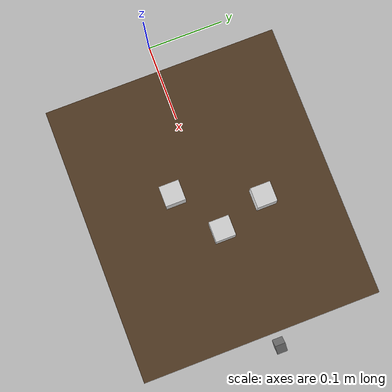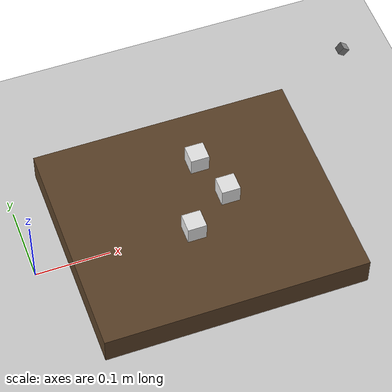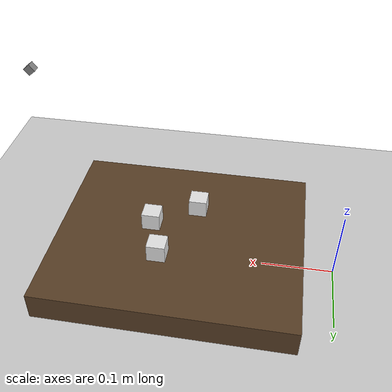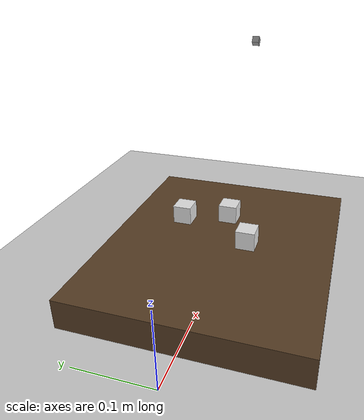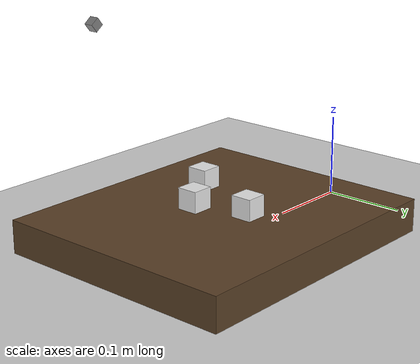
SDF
<?xml version="1.0"?>
<sdf version="1.9">
  <world name="workspace">

    <plugin filename="gz-sim-physics-system" name="gz::sim::systems::Physics">
    </plugin>
    <plugin filename="gz-sim-user-commands-system" name="gz::sim::systems::UserCommands">
    </plugin>
    <plugin filename="gz-sim-scene-broadcaster-system" name="gz::sim::systems::SceneBroadcaster">
    </plugin>
    <plugin filename="gz-sim-sensors-system" name="gz::sim::systems::Sensors">
      <render_engine>ogre2</render_engine>
    </plugin>

    <physics type="ode">
      <max_step_size>0.001</max_step_size>
      <real_time_factor>1</real_time_factor>
      <real_time_update_rate>250</real_time_update_rate>
    </physics>

    <scene>
      <ambient>0.4 0.4 0.4 1.0</ambient>
      <background>0.7 0.7 0.7 1.0</background>
    </scene>
    <light type="directional" name="sun">
      <direction>-0.5 -0.3 -1.0</direction>
      <diffuse>0.8 0.8 0.7 1.0</diffuse>
      <specular>0.3 0.3 0.3 1.0</specular>
    </light>
    <!-- Ground -->
    <model name="ground">
      <static>true</static>
      <link name="link">
        <collision name="collision">
          <geometry>
            <plane><normal>0 0 1</normal></plane>
          </geometry>
        </collision>
        <visual name="visual">
          <geometry>
            <plane>
              <normal>0 0 1</normal>
              <size>100 100</size>
            </plane>
          </geometry>
          <material>
            <ambient>0.8 0.8 0.8 1</ambient>
            <diffuse>0.8 0.8 0.8 1</diffuse>
          </material>
        </visual>
      </link>
    </model>

    <!-- Table: clear of arm base_link. Height lowered so the arm can reach over it. -->
    <model name="table">
      <static>true</static>
      <pose>0.22 0 0.02 0 0 0</pose>
      <link name="table_link">
        <visual name="visual">
          <geometry><box><size>0.35 0.30 0.04</size></box></geometry>
          <material>
            <ambient>0.35 0.25 0.15 1.0</ambient>
            <diffuse>0.35 0.25 0.15 1.0</diffuse>
          </material>
        </visual>
        <collision name="collision">
          <geometry><box><size>0.35 0.30 0.04</size></box></geometry>
        </collision>
      </link>
    </model>

    <!-- Blocks: small 0.025 m white cubes, dropped just above table surface -->
    <model name="red_block">
      <pose>0.24 0.06 0.065 0 0 0</pose>
      <link name="block_link">
        <visual name="visual">
          <geometry><box><size>0.025 0.025 0.025</size></box></geometry>
          <material>
            <ambient>0.9 0.9 0.9 1.0</ambient>
            <diffuse>0.9 0.9 0.9 1.0</diffuse>
          </material>
        </visual>
        <collision name="collision">
          <geometry><box><size>0.025 0.025 0.025</size></box></geometry>
        </collision>
        <inertial>
          <mass>0.02</mass>
          <inertia>
            <ixx>2.08e-06</ixx><ixy>0</ixy><ixz>0</ixz>
            <iyy>2.08e-06</iyy><iyz>0</iyz>
            <izz>2.08e-06</izz>
          </inertia>
        </inertial>
      </link>
    </model>

    <model name="green_block">
      <pose>0.20 -0.04 0.065 0 0 0</pose>
      <link name="block_link">
        <visual name="visual">
          <geometry><box><size>0.025 0.025 0.025</size></box></geometry>
          <material>
            <ambient>0.9 0.9 0.9 1.0</ambient>
            <diffuse>0.9 0.9 0.9 1.0</diffuse>
          </material>
        </visual>
        <collision name="collision">
          <geometry><box><size>0.025 0.025 0.025</size></box></geometry>
        </collision>
        <inertial>
          <mass>0.02</mass>
          <inertia>
            <ixx>2.08e-06</ixx><ixy>0</ixy><ixz>0</ixz>
            <iyy>2.08e-06</iyy><iyz>0</iyz>
            <izz>2.08e-06</izz>
          </inertia>
        </inertial>
      </link>
    </model>

    <model name="blue_block">
      <pose>0.26 0.00 0.065 0 0 0</pose>
      <link name="block_link">
        <visual name="visual">
          <geometry><box><size>0.025 0.025 0.025</size></box></geometry>
          <material>
            <ambient>0.9 0.9 0.9 1.0</ambient>
            <diffuse>0.9 0.9 0.9 1.0</diffuse>
          </material>
        </visual>
        <collision name="collision">
          <geometry><box><size>0.025 0.025 0.025</size></box></geometry>
        </collision>
        <inertial>
          <mass>0.02</mass>
          <inertia>
            <ixx>2.08e-06</ixx><ixy>0</ixy><ixz>0</ixz>
            <iyy>2.08e-06</iyy><iyz>0</iyz>
            <izz>2.08e-06</izz>
          </inertia>
        </inertial>
      </link>
    </model>

    <!-- Front camera: angled view of the workspace -->
    <model name="cam_front">
      <static>true</static>
      <pose>0.40 0 0.28 0 0.9 3.14</pose>
      <link name="camera_link">
        <visual name="visual">
          <geometry><box><size>0.01 0.01 0.01</size></box></geometry>
          <material><ambient>0.5 0.5 0.5 1</ambient></material>
        </visual>
        <collision name="collision">
          <geometry><box><size>0.01 0.01 0.01</size></box></geometry>
        </collision>
        <sensor name="camera" type="camera">
          <always_on>true</always_on>
          <visualize>true</visualize>
          <update_rate>30</update_rate>
          <camera>
            <horizontal_fov>1.0453</horizontal_fov>
            <image>
              <width>640</width>
              <height>480</height>
              <format>R8G8B8</format>
            </image>
            <clip>
              <near>0.01</near>
              <far>10.0</far>
            </clip>
          </camera>
        </sensor>
      </link>
    </model>

  </world>
</sdf>
